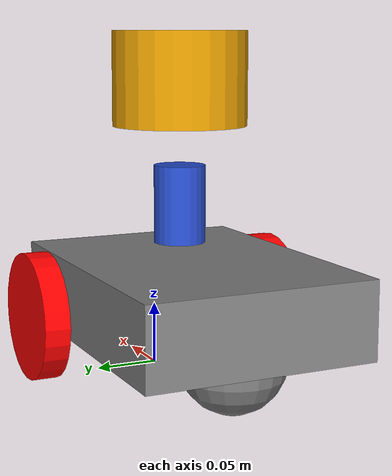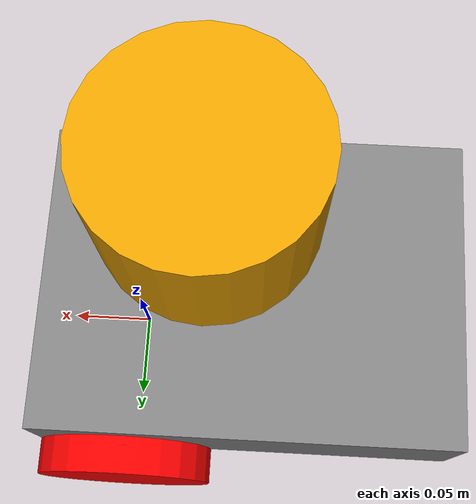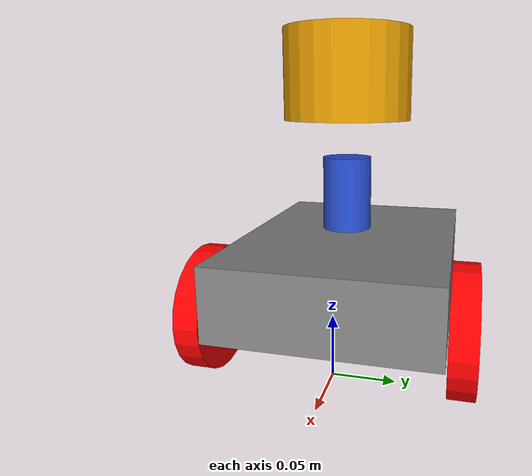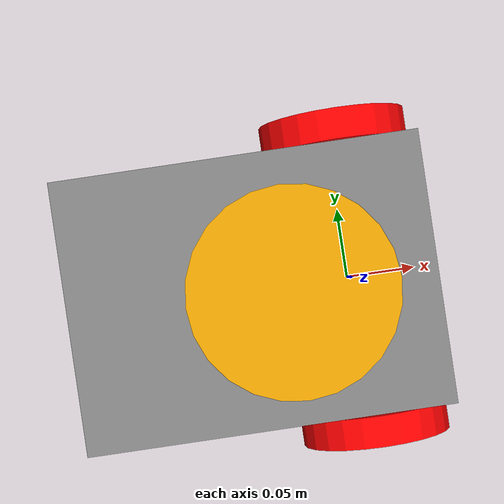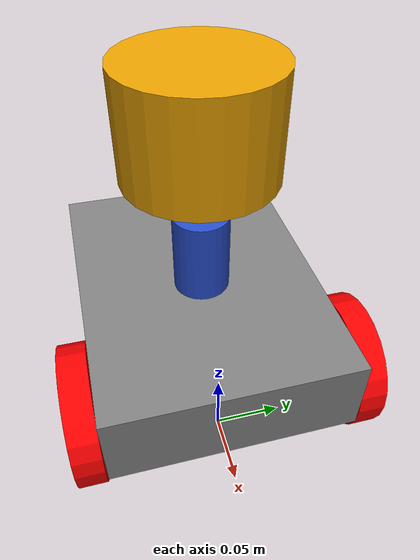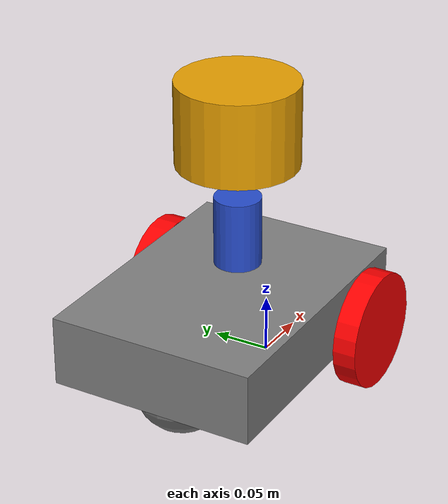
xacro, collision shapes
<?xml version="1.0"?>
<robot name="dtw_robot" xmlns:xacro="http://www.ros.org/wiki/xacro">
  <gazebo>
    <plugin name="gazebo_ros_control" filename="libgazebo_ros_control.so">
      <robotNamespace>/dtw_robot</robotNamespace>
    </plugin>
  </gazebo>

  <!-- Include Base Body -->
  <xacro:include filename="$(find rtw_gazebo)/xacro/dtw_robot/base/base.xacro"/>
  <!-- Include Sensors -->
  <xacro:include filename="$(find rtw_gazebo)/xacro/dtw_robot/sensor/sensor.xacro"/>
</robot>

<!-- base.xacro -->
<robot name="dtw_robot" xmlns:xacro="http://www.ros.org/wiki/xacro">
  <material name="gray">
    <color rgba="0.5 0.5 0.5 2.5"/>
  </material>
  <material name="red">
    <color rgba="1.0 0.0 0.0 2.5"/>
  </material>

  <xacro:macro name="wheel_macro" params="parent prefix xyz">
    <joint name="${prefix}_joint" type="continuous">
      <origin xyz="${xyz}" rpy="${radians(-90)} 0 0"/>
      <parent link="${parent}"/>
      <child  link="${prefix}_link"/>
      <axis xyz="0 0 1" />
      <dynamics damping="0.01"/>
    </joint>
    <transmission name="${prefix}_trans" type="SimpleTransmission">
      <type>transmission_interface/SimpleTransmission</type>
        <actuator name="${prefix}_motor">
          <mechanicalReduction>1</mechanicalReduction>
        </actuator>
      <joint name="${prefix}_joint">
        <hardwareInterface>hardware_interface/VelocityJointInterface</hardwareInterface>
      </joint>
    </transmission>
    <link name="${prefix}_link">
      <inertial>
        <origin xyz="0 0 0" rpy="0 0 0"/>
        <mass value="0.1"/>
        <inertia ixx="0.0001" ixy="0.0" ixz="0.0" iyy="0.0001" iyz="0.0" izz="0.0001"/>
      </inertial>
      <visual>
        <geometry>
          <cylinder radius="0.05" length="0.02" />
        </geometry>
        <material name="red"/>
      </visual>
      <collision>
        <geometry>
          <cylinder radius="0.05" length="0.02" />
        </geometry>
      </collision>
    </link>
    <gazebo reference="${prefix}_link">
      <material>Gazebo/Red</material>
      <mu1 value="2.5" />
      <mu2 value="2.5" />
      <kp value="50000" />
      <kd value="10" />
    </gazebo>
  </xacro:macro>

  <link name="base_link"/>

  <joint name="body_joint" type="fixed">
    <parent link="base_link"/>
    <child  link="body_link"/>
    <origin xyz="-0.07 0 0.07" rpy="0 0 0"/>
  </joint>
  <link name="body_link">
    <inertial>
      <origin xyz="0 0 0" rpy="0 0 0"/>
      <mass value="1.0"/>
      <inertia ixx="0.001" ixy="0.0" ixz="0.0" iyy="0.001" iyz="0.0" izz="0.001"/>
    </inertial>
    <visual>
      <origin xyz="0 0 0" rpy="0 0 0" />
      <geometry>
        <box size="0.24 0.18 0.06" />
      </geometry>
      <material name="gray" />
    </visual>
    <collision>
      <origin xyz="0 0 0" rpy="0 0 0" />
      <geometry>
        <box size="0.24 0.178 0.06" />
      </geometry>
    </collision>
  </link>
  <gazebo reference="body_link">
    <material>Gazebo/Gray</material>
  </gazebo>

  <xacro:wheel_macro prefix="left_wheel"  parent="base_link" xyz="0 0.1 0.05"/>
  <xacro:wheel_macro prefix="right_wheel" parent="base_link" xyz="0 -0.1 0.05"/>

  <joint name="ball_joint" type="fixed">
    <parent link="base_link"/>
    <child  link="ball_link"/>
    <origin xyz="-0.14 0 0.04" rpy="0 0 0"/>
  </joint>
  <link name="ball_link">
    <visual>
      <origin xyz="0 0 0" rpy="0 0 0" />
      <geometry>
        <sphere radius="0.04" />
      </geometry>
      <material name="gray" />
    </visual>
    <collision>
      <origin xyz="0 0 0" rpy="0 0 0" />
      <geometry>
        <sphere radius="0.04" />
      </geometry>
      <material name="gray" />
    </collision>
  </link>
  <gazebo reference="ball_link">
    <material>Gazebo/Gray</material>
    <mu1 value="0.5" />
    <mu2 value="0.5" />
  </gazebo>
</robot>

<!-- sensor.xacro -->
<robot name="dtw_robot" xmlns:xacro="http://www.ros.org/wiki/xacro">

  <!-- Include sensor macros -->
  <xacro:include filename="$(find rtw_gazebo)/xacro/dtw_robot/sensor/camera/camera.xacro" />
  <xacro:include filename="$(find rtw_gazebo)/xacro/dtw_robot/sensor/imu/imu.xacro" />
  <xacro:include filename="$(find rtw_gazebo)/xacro/dtw_robot/sensor/2d_lidar/2d_lidar.xacro" />
  <xacro:include filename="$(find rtw_gazebo)/xacro/dtw_robot/sensor/3d_lidar/3d_lidar.xacro" />

  <!-- Enable Flag -->
  <xacro:arg name="camera_enabled" default="true" />
  <xacro:arg name="imu_enabled" default="true" />
  <xacro:arg name="2dlidar_enabled" default="true" />
  <xacro:arg name="3dlidar_enabled" default="true" />

  <!-- ADD SENSORS -->
  <!-- Camera -->
  <xacro:if value="$(arg camera_enabled)">
    <xacro:camera_macro prefix="camera" parent="base_link" xyz="-0.05 0 0.3"/>
  </xacro:if>
  <!-- IMU -->
  <xacro:if value="$(arg imu_enabled)">
    <xacro:imu_macro prefix="imu" parent="base_link" xyz="-0.05 0 0"/>
  </xacro:if>
  <!-- 2D LIDAR -->
  <xacro:if value="$(arg 2dlidar_enabled)">
    <xacro:lidar_2d_macro prefix="lidar" parent="base_link" xyz="-0.05 0 0.14"/>
  </xacro:if>
  <!-- 3D LIDAR -->
  <xacro:if value="$(arg 3dlidar_enabled)">
    <xacro:velodyne_vlp16 parent="base_link" xyz="-0.05 0 0.2"/>
  </xacro:if>
</robot>

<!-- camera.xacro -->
<robot xmlns:xacro="http://www.ros.org/wiki/xacro">
  <xacro:macro name="camera_macro" params="parent prefix xyz">
    <joint name="${prefix}_joint" type="fixed">
      <parent link="${parent}"/>
      <child  link="${prefix}_link"/>
      <origin xyz="${xyz}" rpy="${radians(-90)} 0 ${radians(-90)}"/>
    </joint>
    <link name="${prefix}_link"/>
    <gazebo reference="${prefix}_link">
      <sensor type="camera" name="${prefix}">
        <update_rate>10.0</update_rate>
        <camera name="${prefix}">
          <pose>0 0 0 0 ${radians(-90)} ${radians(90)}</pose>
          <horizontal_fov>1.3962634</horizontal_fov>
          <image>
            <width>800</width>
            <height>600</height>
            <format>R8G8B8</format>
          </image>
          <clip>
            <near>0.02</near>
            <far>300</far>
          </clip>
          <noise>
            <type>gaussian</type>
            <mean>0.0</mean>
            <stddev>0.007</stddev>
          </noise>
        </camera>
        <plugin name="camera_controller" filename="libgazebo_ros_camera.so">
          <alwaysOn>true</alwaysOn>
          <updateRate>0.0</updateRate>
          <cameraName>${prefix}</cameraName>
          <imageTopicName>image_raw</imageTopicName>
          <cameraInfoTopicName>camera_info</cameraInfoTopicName>
          <frameName>${prefix}_link</frameName>
          <hackBaseline>0.07</hackBaseline>
          <distortionK1>0.0</distortionK1>
          <distortionK2>0.0</distortionK2>
          <distortionK3>0.0</distortionK3>
          <distortionT1>0.0</distortionT1>
          <distortionT2>0.0</distortionT2>
        </plugin>
      </sensor>
    </gazebo>
  </xacro:macro>
</robot>

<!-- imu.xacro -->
<robot xmlns:xacro="http://www.ros.org/wiki/xacro">
  <xacro:macro name="imu_macro" params="parent prefix xyz">
    <joint name="imu_joint" type="fixed">
      <parent link="${parent}"/>
      <child  link="${prefix}_link"/>
      <origin xyz="${xyz}" rpy="0 0 0"/>
    </joint>
    <link name="${prefix}_link"/>
    <gazebo reference="${prefix}_link">
      <gravity>true</gravity>
      <sensor name="imu_sensor" type="imu">
        <always_on>true</always_on>
        <update_rate>100</update_rate>
        <visualize>true</visualize>
        <topic>data</topic>
        <plugin filename="libgazebo_ros_imu_sensor.so" name="imu_plugin">
          <topicName>${prefix}/data</topicName>
          <bodyName>${prefix}_link</bodyName>
          <updateRateHZ>10.0</updateRateHZ>
          <gaussianNoise>0.0</gaussianNoise>
          <xyzOffset>0 0 0</xyzOffset>
          <rpyOffset>0 0 0</rpyOffset>
          <frameName>${prefix}_link</frameName>
        </plugin>
        <pose>0 0 0 0 0 0</pose>
      </sensor>
    </gazebo>
  </xacro:macro>
</robot>

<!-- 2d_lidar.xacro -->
<robot xmlns:xacro="http://www.ros.org/wiki/xacro">
  <xacro:macro name="lidar_2d_macro" params="parent prefix xyz">
    <joint name="${prefix}_joint" type="fixed">
      <parent link="${parent}"/>
      <child  link="${prefix}_link"/>
      <origin xyz="${xyz}" rpy="0 0 0"/>
    </joint>
    <link name="${prefix}_link">
      <visual>
        <origin xyz="0 0 0" rpy="0 0 0" />
        <geometry>
          <cylinder radius="0.02" length="0.06" />
        </geometry>
        <material name="blue" />
      </visual>
      <collision>
        <origin xyz="0 0 0" rpy="0 0 0"/>
        <geometry>
          <cylinder radius="0.02" length="0.06" />
        </geometry>
      </collision>
    </link>
    <gazebo reference="${prefix}_link">
      <material>Gazebo/Blue</material>
      <sensor type="ray" name="${prefix}">
        <pose>0 0 0 0 0 0</pose>
        <visualize>false</visualize>
        <update_rate>10</update_rate>
        <ray>
          <scan>
            <horizontal>
              <samples>400</samples>
              <resolution>1</resolution>
              <min_angle>${radians(-90)}</min_angle>
              <max_angle>${radians( 90)}</max_angle>
            </horizontal>
          </scan>
          <range>
            <min>0.10</min>
            <max>20.0</max>
            <resolution>0.01</resolution>
          </range>
          <noise>
            <type>gaussian</type>
            <mean>0.0</mean>
            <stddev>0.01</stddev>
          </noise>
        </ray>
        <plugin name="gazebo_ros_lidar_controller" filename="libgazebo_ros_laser.so">
          <topicName>/${prefix}_link/scan</topicName>
          <frameName>${prefix}_link</frameName>
        </plugin>
      </sensor>
    </gazebo>
  </xacro:macro>
</robot>

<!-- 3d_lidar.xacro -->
<robot xmlns:xacro="http://www.ros.org/wiki/xacro">
  <xacro:include filename="$(find velodyne_description)/urdf/VLP-16.urdf.xacro"/>

  <xacro:macro name="velodyne_vlp16" params="parent xyz">
    <xacro:VLP-16 parent="${parent}" name="velodyne"
                  topic="/velodyne/points"
                  hz="10" samples="440">
      <origin xyz="${xyz}" rpy="0 0 0" />
    </xacro:VLP-16>
  </xacro:macro>
</robot>

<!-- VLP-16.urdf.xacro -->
<robot xmlns:xacro="http://www.ros.org/wiki/xacro" name="VLP-16">
  <xacro:property name="M_PI" value="3.1415926535897931" />
  <xacro:macro name="VLP-16" params="*origin is_sim:=true parent:=base_link name:=velodyne tf_prefix:='' topic:=/velodyne_points organize_cloud:=false hz:=10 lasers:=16 samples:=1875 collision_range:=0.3 min_range:=0.0 max_range:=100.0 noise:=0.008 min_angle:=-${M_PI} max_angle:=${M_PI} gpu:=false">

    <joint name="${name}_base_mount_joint" type="fixed">
      <xacro:insert_block name="origin" />
      <parent link="${parent}"/>
      <child link="${name}_base_link"/>
    </joint>

    <link name="${name}_base_link">
      <inertial>
        <mass value="0.83"/>
        <origin xyz="0 0 0.03585"/>
        <inertia ixx="${(0.83 * (3.0*0.0516*0.0516 + 0.0717*0.0717)) / 12.0}" ixy="0" ixz="0"
          iyy="${(0.83 * (3.0*0.0516*0.0516 + 0.0717*0.0717)) / 12.0}" iyz="0"
          izz="${0.5 * 0.83 * (0.0516*0.0516)}"/>
      </inertial>
      <visual>
        <geometry>
          <mesh filename="package://velodyne_description/meshes/VLP16_base_1.dae" />
        </geometry>
      </visual>
      <visual>
        <geometry>
          <mesh filename="package://velodyne_description/meshes/VLP16_base_2.dae" />
        </geometry>
      </visual>
      <collision>
        <origin rpy="0 0 0" xyz="0 0 0.03585"/>
        <geometry>
          <cylinder radius="0.0516" length="0.0717"/>
        </geometry>
      </collision>
    </link>

    <joint name="${name}_base_scan_joint" type="fixed" >
      <origin xyz="0 0 0.0377" rpy="0 0 0" />
      <parent link="${name}_base_link" />
      <child link="${name}"/>
    </joint>

    <link name="${name}">
      <inertial>
        <mass value="0.01"/>
        <origin xyz="0 0 0"/>
        <inertia ixx="1e-7" ixy="0" ixz="0" iyy="1e-7" iyz="0" izz="1e-7"/>
      </inertial>
      <visual>
        <origin xyz="0 0 -0.0377" />
        <geometry>
          <mesh filename="package://velodyne_description/meshes/VLP16_scan.dae" />
        </geometry>
      </visual>
      <collision>
        <geometry>
          <sphere radius="0"/>
        </geometry>
      </collision>
    </link>

    <!-- Gazebo requires the velodyne_gazebo_plugins package -->
    <xacro:if value="${is_sim}">
        <gazebo reference="${name}">
            <xacro:if value="${gpu}">
                <sensor type="gpu_ray" name="${name}-VLP16">
                <pose>0 0 0 0 0 0</pose>
                <visualize>false</visualize>
                <update_rate>${hz}</update_rate>
                <ray>
                    <scan>
                    <horizontal>
                        <samples>${samples}</samples>
                        <resolution>1</resolution>
                        <min_angle>${min_angle}</min_angle>
                        <max_angle>${max_angle}</max_angle>
                    </horizontal>
                    <vertical>
                        <samples>${lasers}</samples>
                        <resolution>1</resolution>
                        <min_angle>-${15.0*M_PI/180.0}</min_angle>
                        <max_angle> ${15.0*M_PI/180.0}</max_angle>
                    </vertical>
                    </scan>
                    <range>
                    <min>${collision_range}</min>
                    <max>${max_range+1}</max>
                    <resolution>0.001</resolution>
                    </range>
                    <noise>
                    <type>gaussian</type>
                    <mean>0.0</mean>
                    <stddev>0.0</stddev>
                    </noise>
                </ray>
                <plugin name="gazebo_ros_laser_controller" filename="libgazebo_ros_velodyne_laser.so">
                    <ros>
                    <namespace>/${name}</namespace>
                    <remapping>~/out:=${topic}</remapping>
                    </ros>
                    <tf_prefix>${tf_prefix}</tf_prefix>
                    <frame_name>${name}</frame_name>
                    <organize_cloud>${organize_cloud}</organize_cloud>
                    <min_range>${min_range}</min_range>
                    <max_range>${max_range}</max_range>
                    <gaussian_noise>${noise}</gaussian_noise>
                </plugin>
                </sensor>
            </xacro:if>
            <xacro:unless value="${gpu}">
                <sensor type="ray" name="${name}-VLP16">
                <pose>0 0 0 0 0 0</pose>
                <visualize>false</visualize>
                <update_rate>${hz}</update_rate>
                <ray>
                    <scan>
                    <horizontal>
                        <samples>${samples}</samples>
                        <resolution>1</resolution>
                        <min_angle>${min_angle}</min_angle>
                        <max_angle>${max_angle}</max_angle>
                    </horizontal>
                    <vertical>
                        <samples>${lasers}</samples>
                        <resolution>1</resolution>
                        <min_angle>-${15.0*M_PI/180.0}</min_angle>
                        <max_angle> ${15.0*M_PI/180.0}</max_angle>
                    </vertical>
                    </scan>
                    <range>
                    <min>${collision_range}</min>
                    <max>${max_range+1}</max>
                    <resolution>0.001</resolution>
                    </range>
                    <noise>
                    <type>gaussian</type>
                    <mean>0.0</mean>
                    <stddev>0.0</stddev>
                    </noise>
                </ray>
                <plugin name="gazebo_ros_laser_controller" filename="libgazebo_ros_velodyne_laser.so">
                    <ros>
                    <namespace>/${name}</namespace>
                    <remapping>~/out:=${topic}</remapping>
                    </ros>
                    <tf_prefix>${tf_prefix}</tf_prefix>
                    <frame_name>${name}</frame_name>
                    <organize_cloud>${organize_cloud}</organize_cloud>
                    <min_range>${min_range}</min_range>
                    <max_range>${max_range}</max_range>
                    <gaussian_noise>${noise}</gaussian_noise>
                </plugin>
                </sensor>
            </xacro:unless>
        </gazebo>
    </xacro:if>

  </xacro:macro>
</robot>
